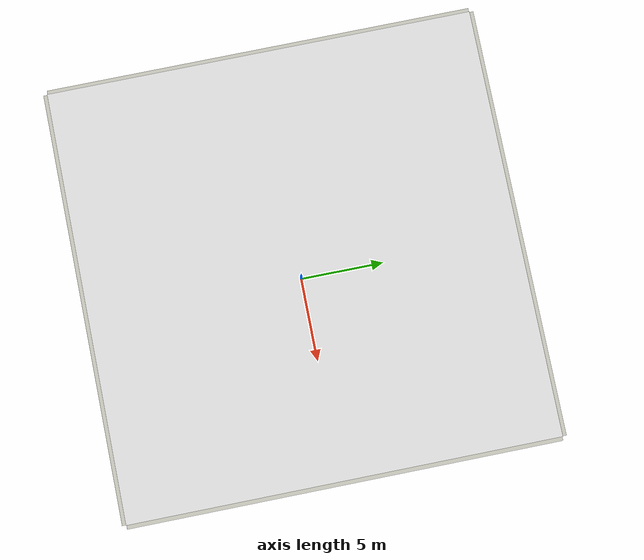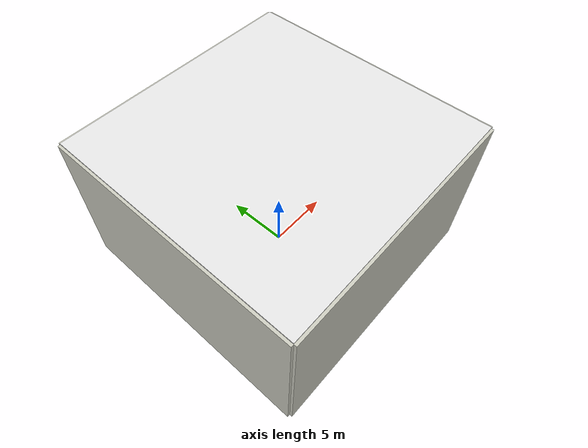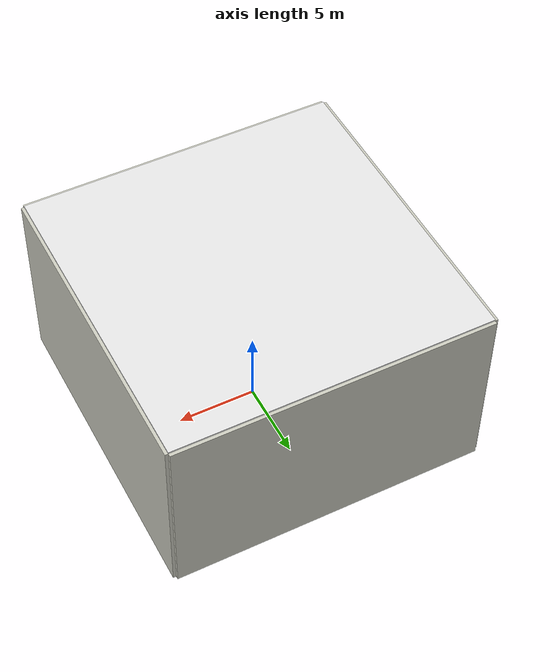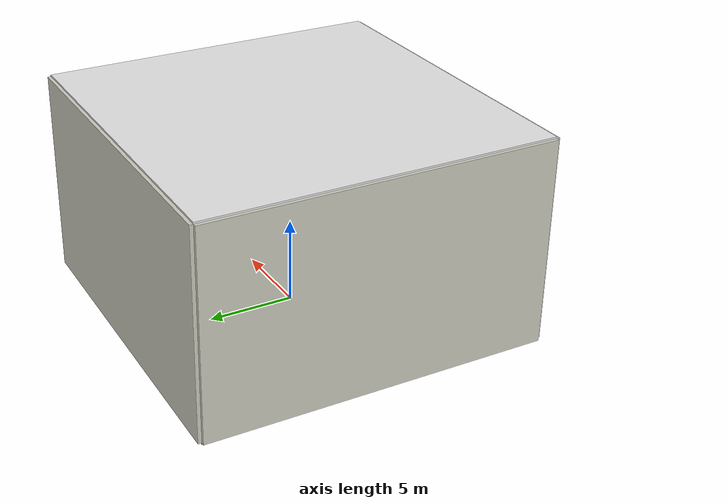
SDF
<sdf version="1.9">
 <world name="indoor_room">
  <physics name="1ms" type="ignore">
   <max_step_size>0.001</max_step_size>
   <real_time_factor>1.0</real_time_factor>
  </physics>
  <plugin filename="gz-sim-physics-system" name="gz::sim::systems::Physics"/>
  <plugin filename="gz-sim-sensors-system" name="gz::sim::systems::Sensors">
   <render_engine>ogre2</render_engine>
  </plugin>
  <plugin filename="gz-sim-user-commands-system" name="gz::sim::systems::UserCommands"/>
  <plugin filename="gz-sim-scene-broadcaster-system" name="gz::sim::systems::SceneBroadcaster"/>
  <plugin filename="gz-sim-imu-system" name="gz::sim::systems::Imu"/>
  <plugin filename="gz-sim-pose-publisher-system" name="gz::sim::systems::PosePublisher">
   <publish_model_pose>true</publish_model_pose>
   <publish_nested_model_pose>false</publish_nested_model_pose>
   <update_frequency>50</update_frequency>
  </plugin>
  <light type="point" name="ceiling_light_1">
   <pose>-5 -5 11.5 0 0 0</pose>
   <diffuse>1.0 1.0 1.0 1</diffuse>
   <specular>0.3 0.3 0.3 1</specular>
   <attenuation>
    <range>30</range>
    <constant>0.5</constant>
    <linear>0.02</linear>
    <quadratic>0.003</quadratic>
   </attenuation>
  </light>
  <light type="point" name="ceiling_light_2">
   <pose>-5 5 11.5 0 0 0</pose>
   <diffuse>1.0 1.0 1.0 1</diffuse>
   <specular>0.3 0.3 0.3 1</specular>
   <attenuation>
    <range>30</range>
    <constant>0.5</constant>
    <linear>0.02</linear>
    <quadratic>0.003</quadratic>
   </attenuation>
  </light>
  <light type="point" name="ceiling_light_3">
   <pose>5 -5 11.5 0 0 0</pose>
   <diffuse>1.0 1.0 1.0 1</diffuse>
   <specular>0.3 0.3 0.3 1</specular>
   <attenuation>
    <range>30</range>
    <constant>0.5</constant>
    <linear>0.02</linear>
    <quadratic>0.003</quadratic>
   </attenuation>
  </light>
  <light type="point" name="ceiling_light_4">
   <pose>5 5 11.5 0 0 0</pose>
   <diffuse>1.0 1.0 1.0 1</diffuse>
   <specular>0.3 0.3 0.3 1</specular>
   <attenuation>
    <range>30</range>
    <constant>0.5</constant>
    <linear>0.02</linear>
    <quadratic>0.003</quadratic>
   </attenuation>
  </light>
  <include><uri>model://indoor_room_scenery</uri></include>
  <model name="front_camera">
   <static>false</static>
   <pose relative_to="iris::iris_with_standoffs::base_link">0.18 0 -0.02 0 0 0</pose>
   <link name="link">
    <inertial>
     <mass>0.07</mass>
     <inertia><ixx>1e-5</ixx><ixy>0</ixy><ixz>0</ixz><iyy>1e-5</iyy><iyz>0</iyz><izz>1e-5</izz></inertia>
    </inertial>
    <visual name="visual">
     <geometry><box><size>0.025 0.09 0.025</size></box></geometry>
     <material><ambient>0.5 0.5 0.5 1</ambient><diffuse>0.6 0.6 0.6 1</diffuse></material>
    </visual>
    <sensor name="front_rgbd" type="rgbd_camera">
     <always_on>true</always_on>
     <update_rate>15</update_rate>
     <topic>/front_camera</topic>
     <camera>
      <horizontal_fov>1.5184</horizontal_fov>
      <image><width>640</width><height>480</height><format>R8G8B8</format></image>
      <clip><near>0.1</near><far>10.0</far></clip>
      <depth_camera><clip><near>0.1</near><far>10.0</far></clip></depth_camera>
     </camera>
    </sensor>
   </link>
  </model>
  <joint name="front_camera_joint" type="fixed">
   <parent>iris::iris_with_standoffs::base_link</parent>
   <child>front_camera::link</child>
  </joint>
  <model name="down_camera">
   <static>false</static>
   <pose relative_to="iris::iris_with_standoffs::base_link">0 0 -0.04 0 1.5708 0</pose>
   <link name="link">
    <inertial>
     <mass>0.03</mass>
     <inertia><ixx>1e-6</ixx><ixy>0</ixy><ixz>0</ixz><iyy>1e-6</iyy><iyz>0</iyz><izz>1e-6</izz></inertia>
    </inertial>
    <visual name="visual">
     <geometry><box><size>0.02 0.02 0.015</size></box></geometry>
     <material><ambient>0.2 0.2 0.2 1</ambient><diffuse>0.3 0.3 0.3 1</diffuse></material>
    </visual>
    <sensor name="down_rgb" type="camera">
     <always_on>true</always_on>
     <update_rate>15</update_rate>
     <topic>/down_camera</topic>
     <camera>
      <horizontal_fov>1.047</horizontal_fov>
      <image><width>640</width><height>480</height><format>R8G8B8</format></image>
      <clip><near>0.1</near><far>50.0</far></clip>
     </camera>
    </sensor>
   </link>
  </model>
  <joint name="down_camera_joint" type="fixed">
   <parent>iris::iris_with_standoffs::base_link</parent>
   <child>down_camera::link</child>
  </joint>
  <model name="lidar_rangefinder">
   <static>false</static>
   <pose relative_to="iris::iris_with_standoffs::base_link">0 0 -0.05 0 1.5708 0</pose>
   <link name="link">
    <inertial>
     <mass>0.03</mass>
     <inertia><ixx>1e-6</ixx><ixy>0</ixy><ixz>0</ixz><iyy>1e-6</iyy><iyz>0</iyz><izz>1e-6</izz></inertia>
    </inertial>
    <sensor name="lidar_rangefinder" type="gpu_lidar">
     <always_on>true</always_on>
     <update_rate>50</update_rate>
     <topic>/lidar/range</topic>
     <ray>
      <scan>
       <horizontal>
        <samples>1</samples>
        <resolution>1</resolution>
        <min_angle>0</min_angle>
        <max_angle>0</max_angle>
       </horizontal>
      </scan>
      <range><min>0.1</min><max>40.0</max><resolution>0.01</resolution></range>
     </ray>
    </sensor>
   </link>
  </model>
  <joint name="lidar_joint" type="fixed">
   <parent>iris::iris_with_standoffs::base_link</parent>
   <child>lidar_rangefinder::link</child>
  </joint>
 </world>
</sdf>

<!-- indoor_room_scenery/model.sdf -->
<sdf version="1.9">
  <model name="indoor_room_scenery">
    <static>true</static>

    <link name="floor">
      <pose>0 0 -0.05 0 0 0</pose>
      <collision name="collision">
        <geometry><box><size>20 20 0.1</size></box></geometry>
      </collision>
      <visual name="visual">
        <geometry><box><size>20 20 0.1</size></box></geometry>
        <material>
          <ambient>0.6 0.6 0.6 1</ambient>
          <diffuse>0.6 0.6 0.6 1</diffuse>
        </material>
      </visual>
    </link>

    <link name="wall_north">
      <pose>0 10.1 6 0 0 0</pose>
      <collision name="collision">
        <geometry><box><size>20 0.2 12</size></box></geometry>
      </collision>
      <visual name="visual">
        <geometry><box><size>20 0.2 12</size></box></geometry>
        <material>
          <ambient>0.8 0.8 0.75 1</ambient>
          <diffuse>0.8 0.8 0.75 1</diffuse>
        </material>
      </visual>
    </link>
    <link name="wall_south">
      <pose>0 -10.1 6 0 0 0</pose>
      <collision name="collision">
        <geometry><box><size>20 0.2 12</size></box></geometry>
      </collision>
      <visual name="visual">
        <geometry><box><size>20 0.2 12</size></box></geometry>
        <material>
          <ambient>0.8 0.8 0.75 1</ambient>
          <diffuse>0.8 0.8 0.75 1</diffuse>
        </material>
      </visual>
    </link>
    <link name="wall_east">
      <pose>10.1 0 6 0 0 0</pose>
      <collision name="collision">
        <geometry><box><size>0.2 20 12</size></box></geometry>
      </collision>
      <visual name="visual">
        <geometry><box><size>0.2 20 12</size></box></geometry>
        <material>
          <ambient>0.8 0.8 0.75 1</ambient>
          <diffuse>0.8 0.8 0.75 1</diffuse>
        </material>
      </visual>
    </link>
    <link name="wall_west">
      <pose>-10.1 0 6 0 0 0</pose>
      <collision name="collision">
        <geometry><box><size>0.2 20 12</size></box></geometry>
      </collision>
      <visual name="visual">
        <geometry><box><size>0.2 20 12</size></box></geometry>
        <material>
          <ambient>0.8 0.8 0.75 1</ambient>
          <diffuse>0.8 0.8 0.75 1</diffuse>
        </material>
      </visual>
    </link>

    <link name="ceiling">
      <pose>0 0 12.05 0 0 0</pose>
      <collision name="collision">
        <geometry><box><size>20 20 0.1</size></box></geometry>
      </collision>
      <visual name="visual">
        <geometry><box><size>20 20 0.1</size></box></geometry>
        <material>
          <ambient>0.9 0.9 0.9 1</ambient>
          <diffuse>0.9 0.9 0.9 1</diffuse>
        </material>
      </visual>
    </link>

    <link name="gate_left_post">
      <pose>5 -0.85 0.75 0 0 0</pose>
      <collision name="collision">
        <geometry><box><size>0.15 0.15 1.5</size></box></geometry>
      </collision>
      <visual name="visual">
        <geometry><box><size>0.15 0.15 1.5</size></box></geometry>
        <material>
          <ambient>0.9 0.6 0.0 1</ambient>
          <diffuse>1.0 0.7 0.0 1</diffuse>
        </material>
      </visual>
    </link>
    <link name="gate_right_post">
      <pose>5 0.85 0.75 0 0 0</pose>
      <collision name="collision">
        <geometry><box><size>0.15 0.15 1.5</size></box></geometry>
      </collision>
      <visual name="visual">
        <geometry><box><size>0.15 0.15 1.5</size></box></geometry>
        <material>
          <ambient>0.9 0.6 0.0 1</ambient>
          <diffuse>1.0 0.7 0.0 1</diffuse>
        </material>
      </visual>
    </link>
    <link name="gate_crossbar">
      <pose>5 0 1.55 0 0 0</pose>
      <collision name="collision">
        <geometry><box><size>0.15 1.85 0.1</size></box></geometry>
      </collision>
      <visual name="visual">
        <geometry><box><size>0.15 1.85 0.1</size></box></geometry>
        <material>
          <ambient>0.9 0.6 0.0 1</ambient>
          <diffuse>1.0 0.7 0.0 1</diffuse>
        </material>
      </visual>
    </link>

    <link name="obstacle_box_1">
      <pose>7 -3 0.5 0 0 0</pose>
      <collision name="collision">
        <geometry><box><size>0.6 0.6 1.0</size></box></geometry>
      </collision>
      <visual name="visual">
        <geometry><box><size>0.6 0.6 1.0</size></box></geometry>
        <material>
          <ambient>0.8 0.2 0.2 1</ambient>
          <diffuse>0.9 0.2 0.2 1</diffuse>
        </material>
      </visual>
    </link>
    <link name="obstacle_box_2">
      <pose>8 2 0.4 0 0 0</pose>
      <collision name="collision">
        <geometry><box><size>1.0 0.5 0.8</size></box></geometry>
      </collision>
      <visual name="visual">
        <geometry><box><size>1.0 0.5 0.8</size></box></geometry>
        <material>
          <ambient>0.2 0.7 0.2 1</ambient>
          <diffuse>0.2 0.8 0.2 1</diffuse>
        </material>
      </visual>
    </link>
    <link name="obstacle_box_3">
      <pose>6 4 0.35 0 0 0</pose>
      <collision name="collision">
        <geometry><box><size>0.8 0.8 0.7</size></box></geometry>
      </collision>
      <visual name="visual">
        <geometry><box><size>0.8 0.8 0.7</size></box></geometry>
        <material>
          <ambient>0.7 0.2 0.5 1</ambient>
          <diffuse>0.8 0.3 0.6 1</diffuse>
        </material>
      </visual>
    </link>

    <link name="obstacle_cylinder_1">
      <pose>9 -1 1.0 0 0 0</pose>
      <collision name="collision">
        <geometry><cylinder><radius>0.3</radius><length>2.0</length></cylinder></geometry>
      </collision>
      <visual name="visual">
        <geometry><cylinder><radius>0.3</radius><length>2.0</length></cylinder></geometry>
        <material>
          <ambient>0.2 0.2 0.8 1</ambient>
          <diffuse>0.2 0.2 0.9 1</diffuse>
        </material>
      </visual>
    </link>
    <link name="obstacle_cylinder_2">
      <pose>7 5 0.75 0 0 0</pose>
      <collision name="collision">
        <geometry><cylinder><radius>0.25</radius><length>1.5</length></cylinder></geometry>
      </collision>
      <visual name="visual">
        <geometry><cylinder><radius>0.25</radius><length>1.5</length></cylinder></geometry>
        <material>
          <ambient>0.7 0.5 0.1 1</ambient>
          <diffuse>0.8 0.6 0.1 1</diffuse>
        </material>
      </visual>
    </link>
    <link name="obstacle_cylinder_3">
      <pose>8 -6 0.5 0 0 0</pose>
      <collision name="collision">
        <geometry><cylinder><radius>0.4</radius><length>1.0</length></cylinder></geometry>
      </collision>
      <visual name="visual">
        <geometry><cylinder><radius>0.4</radius><length>1.0</length></cylinder></geometry>
        <material>
          <ambient>0.5 0.1 0.7 1</ambient>
          <diffuse>0.6 0.1 0.8 1</diffuse>
        </material>
      </visual>
    </link>
  </model>
</sdf>
